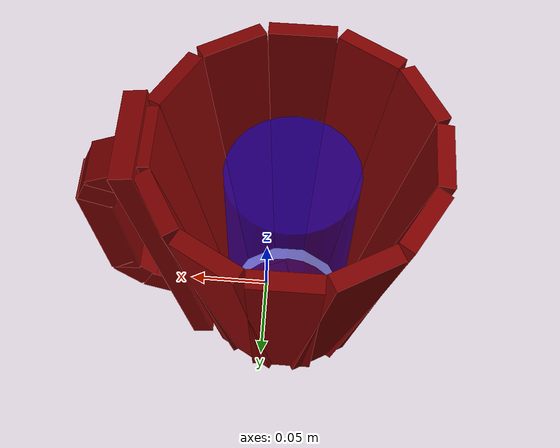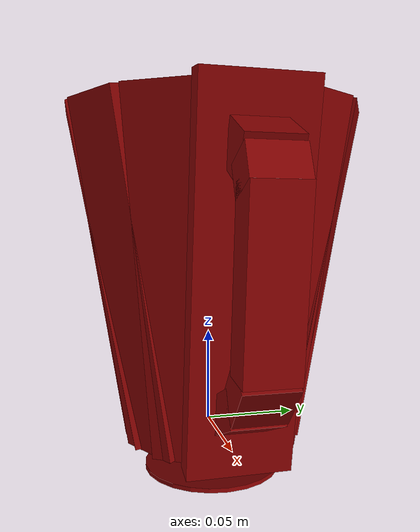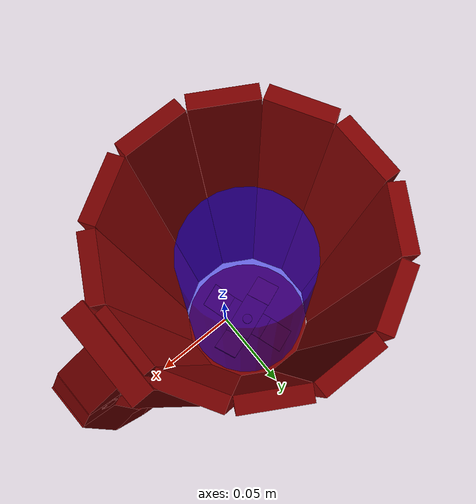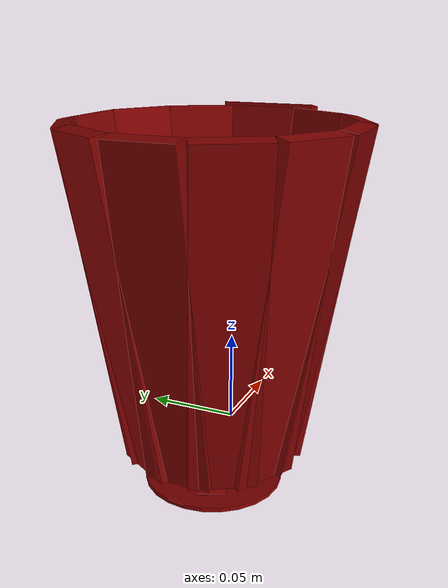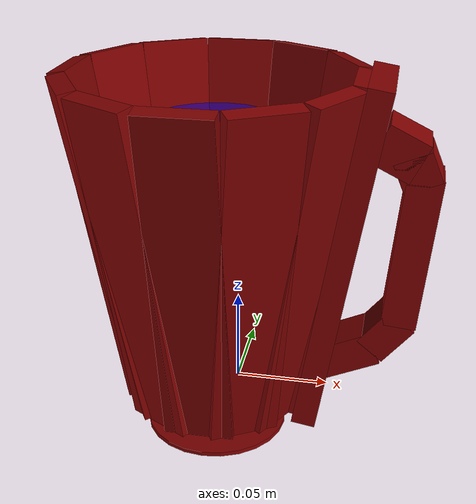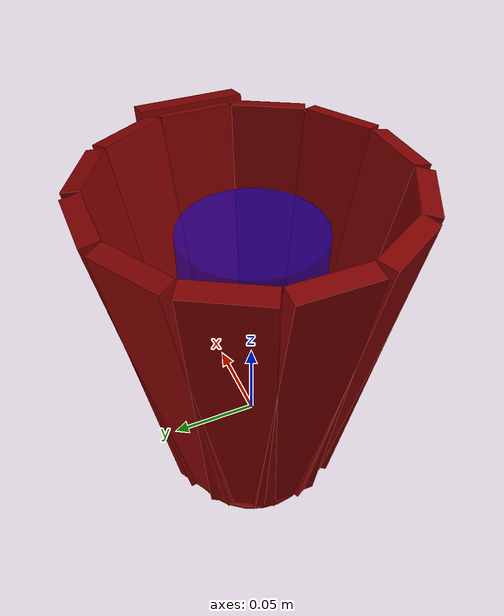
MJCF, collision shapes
<mujoco model="model">
  <option timestep="0.002" gravity="0.0 0.0 -9.81"/>
  <compiler angle="radian"/>
  <asset>
    <mesh file="visuals/blade.obj" name="blade_vis"/>
    <mesh file="visuals/pitcher.obj" name="pitcher_vis"/>
    <mesh file="visuals/pitcher_main.obj" name="pitcher_main_vis"/>
    <material name="pitcher_material" rgba="0.5 0.5 0.5 0.699999988079071" shininess="0.5" specular="0.3103448502657381"/>
    <texture file="visuals/T_BC001.png" name="blade_material" type="2d"/>
    <material name="blade_material" rgba="1 1 1 1.0" texture="blade_material" shininess="0.4472135901451111" specular="0.3103448502657381"/>
    <texture file="visuals/T_BC001.png" name="pitcher_main_material" type="2d"/>
    <material name="pitcher_main_material" rgba="1 1 1 1.0" texture="pitcher_main_material" shininess="0.4472135901451111" specular="0.3103448502657381"/>
  </asset>
  <default>
    <default class="visual">
      <geom conaffinity="0" contype="0" group="1" type="mesh"/>
    </default>
    <default class="collision">
      <geom group="0" rgba="0.5 0 0 0.5" density="1.0" solref="0.004 1" solimp="0.998 0.998 0.001"/>
    </default>
    <default class="spawn">
      <geom group="0" rgba="1 1 1 0.5" contype="0" conaffinity="0"/>
      <site group="0" rgba="1 1 1 0.5"/>
    </default>
    <default class="region">
      <geom group="1" conaffinity="0" contype="0" rgba="0 1 0 0" mass="0"/>
    </default>
  </default>
  <worldbody>
    <body>
      <body name="object">
        <body name="pitcher">
          <geom mesh="pitcher_vis" type="mesh" solimp="0.998 0.998 0.001" solref="0.001 1" friction="0.95 0.3 0.1" class="visual" material="pitcher_material"/>
          <geom type="box" pos="-0.01340979 -0.05356316 0.07928143" size="0.004740975797176361 0.018581919372081757 0.09355513006448746" quat="0.7044395804405212 0.0613589882850647 0.0613589882850647 -0.7044395208358765" class="collision"/>
          <geom type="box" pos="-0.01340978 0.06392115 0.07928143" size="0.004740975797176361 0.018581919372081757 0.09355513006448746" quat="0.7044395804405212 -0.0613589882850647 0.0613589882850647 0.7044395208358765" class="collision"/>
          <geom type="box" pos="-0.01340978 0.06392115 0.07928143" size="0.004740975797176361 0.018581919372081757 0.09355513006448746" quat="0.7044395804405212 -0.0613589882850647 0.0613589882850647 0.7044395208358765" class="collision"/>
          <geom type="box" pos="-0.01340979 -0.05356316 0.07928143" size="0.004740975797176361 0.018581919372081757 0.09355513006448746" quat="0.7044395804405212 0.0613589882850647 0.0613589882850647 -0.7044395208358765" class="collision"/>
          <geom type="box" pos="-0.07215194 0.00517899 0.07928143" size="0.004740975797176361 0.018581919372081757 0.09355513751506805" quat="7.475988894611874e-08 0.08677461743354797 1.3479705129881836e-09 -0.9962279796600342" class="collision"/>
          <geom type="box" pos="0.04533237 0.00517900 0.07928143" size="0.004740975797176361 0.018581919372081757 0.09355513006448746" quat="0.9962279796600342 -5.203322217539608e-09 0.08677471429109573 4.5322756658805474e-10" class="collision"/>
          <geom type="box" pos="0.03746241 0.03455008 0.07928143" size="0.004740975797176361 0.018581919372081757 0.09355513006448746" quat="0.9622822999954224 -0.02245895378291607 0.08381793648004532 0.2578427791595459" class="collision"/>
          <geom type="box" pos="-0.06428199 -0.02419209 0.07928143" size="0.004740975797176361 0.018581919372081757 0.09355513751506805" quat="0.2578427791595459 0.08381803333759308 0.02245897427201271 -0.9622822999954224" class="collision"/>
          <geom type="box" pos="-0.04278086 -0.04569321 0.07928143" size="0.004740975797176361 0.018581919372081757 0.09355513751506805" quat="0.49811404943466187 0.07514900714159012 0.043387334793806076 -0.8627586960792542" class="collision"/>
          <geom type="box" pos="0.01596129 0.05605120 0.07928143" size="0.004740975797176361 0.018581919372081757 0.09355513751506805" quat="0.8627587556838989 -0.04338733106851578 0.07514902949333191 0.4981139600276947" class="collision"/>
          <geom type="box" pos="-0.04278086 0.05605120 0.07928143" size="0.004740975797176361 0.018581919372081757 0.09355513751506805" quat="0.49811404943466187 -0.07514900714159012 0.043387334793806076 0.8627586960792542" class="collision"/>
          <geom type="box" pos="0.01596129 -0.04569320 0.07928143" size="0.004740975797176361 0.018581919372081757 0.09355513006448746" quat="0.8627587556838989 0.04338734969496727 0.07514909654855728 -0.4981139302253723" class="collision"/>
          <geom type="box" pos="0.03746241 -0.02419208 0.07928143" size="0.004740975797176361 0.018581919372081757 0.09355513006448746" quat="0.9622823596000671 0.022458944469690323 0.08381792157888412 -0.25784268975257874" class="collision"/>
          <geom type="box" pos="-0.06428199 0.03455007 0.07928143" size="0.004740975797176361 0.018581919372081757 0.09355513751506805" quat="0.2578427791595459 -0.08381803333759308 0.02245897427201271 0.9622822999954224" class="collision"/>
          <geom class="collision" type="box" pos="0.08060288 0.00442261 0.13820456" size="0.011232865042984486 0.012886925600469112 0.010835387744009495" quat="0.9739777445793152 0.0 0.2266436368227005 0.0" name="pitcher_handle_0"/>
          <geom class="collision" type="box" pos="0.08998093 0.00442261 0.12905489" size="0.008133475668728352 0.012886925600469112 0.009914564900100231" quat="0.8326515555381775 0.0 0.5537972450256348 0.0" name="pitcher_handle_1"/>
          <geom class="collision" type="box" pos="0.09003628 0.00442261 0.08520831" size="0.04113192483782768 0.012886925600469112 0.00918785110116005" quat="0.6727584004402161 3.299103656928537e-09 0.7398622632026672 -2.810899513150389e-09" name="pitcher_handle_2"/>
          <geom class="collision" type="box" pos="0.08013169 0.00442261 0.03771976" size="0.012385156936943531 0.012886925600469112 0.00875075999647379" quat="0.4286668002605438 0.0 0.9034626483917236 0.0" name="pitcher_handle_3"/>
          <geom class="collision" type="box" pos="0.06025315 0.00442261 0.02319772" size="0.015387085266411304 0.012886925600469112 0.009129141457378864" quat="0.2087034434080124 0.0 0.9779789447784424 0.0" name="pitcher_handle_4"/>
          <body name="blade">
            <geom mesh="blade_vis" type="mesh" solimp="0.998 0.998 0.001" solref="0.001 1" friction="0.95 0.3 0.1" class="visual" material="blade_material"/>
            <geom type="cylinder" pos="-0.01364893 0.00517901 -0.02543145" size="0.003170922864228487 0.004099421203136444" quat="1.0 0.0 0.0 0.0" class="collision"/>
            <geom type="box" pos="-0.01410603 0.00418800 -0.02250797" size="0.014141938649117947 0.00791434571146965 0.0002459282986819744" quat="0.9841994047164917 0.0 0.0 0.17706358432769775" class="collision"/>
            <geom type="box" pos="0.00506045 0.01131501 -0.01903470" size="0.009196617640554905 0.0075520845130085945 0.00036561701563186944" quat="0.956265926361084 0.06398852914571762 -0.22334979474544525 0.17769597470760345" class="collision"/>
            <geom type="box" pos="-0.03441685 -0.00336454 -0.02532603" size="0.008302983827888966 0.007914342917501926 0.00034735887311398983" quat="0.9655296802520752 0.029465211555361748 -0.1717633605003357 0.19334332644939423" class="collision"/>
            <geom type="box" pos="-0.01410603 0.00418800 -0.02371466" size="0.014141938649117947 0.007914344780147076 0.0002824610273819417" quat="0.8216372132301331 0.0 -0.0 -0.570010781288147" class="collision"/>
            <geom type="box" pos="-0.00667013 -0.01570229 -0.01987419" size="0.008311481215059757 0.00791434571146965 0.0002459282986819744" quat="0.7972676753997803 -0.1377963125705719 -0.1986253559589386 -0.5531043410301208" class="collision"/>
            <geom type="box" pos="-0.02175518 0.02464871 -0.02674755" size="0.008314153179526329 0.007914344780147076 0.0002459282986819744" quat="0.8104860782623291 -0.09359202533960342 -0.13490740954875946 -0.5622747540473938" class="collision"/>
          </body>
          <body name="pitcher_main">
            <geom class="region" type="cylinder" size="0.03664357587695122 0.07928308844566345" pos="-0.01319418 0.00478656 0.06569185" rgba="0 0 1 0.5" name="reg_int"/>
            <geom mesh="pitcher_main_vis" type="mesh" solimp="0.998 0.998 0.001" solref="0.001 1" friction="0.95 0.3 0.1" class="visual" material="pitcher_main_material"/>
            <geom type="box" pos="0.05502011 0.00517900 0.07935458" size="0.006446782033890486 0.027016857638955116 0.094341941177845" quat="0.9966984391212463 0.0 0.08119235932826996 0.0" class="collision"/>
            <geom type="cylinder" pos="-0.01364892 0.00517901 -0.03183776" size="0.03966103494167328 0.0012146661756560206" quat="1.0 0.0 0.0 0.0" class="collision"/>
          </body>
        </body>
        <geom class="region" name="reg_bbox" density="0" type="box" pos="0.0 0.0042805 0.071852" size="0.101577 0.0802175 0.10497999999999999"/>
      </body>
      <site rgba="0 1 0 0" size="0.005" pos="-0.01137218 0.00440853 0.16801763" name="anchor_site"/>
    </body>
  </worldbody>
</mujoco>
